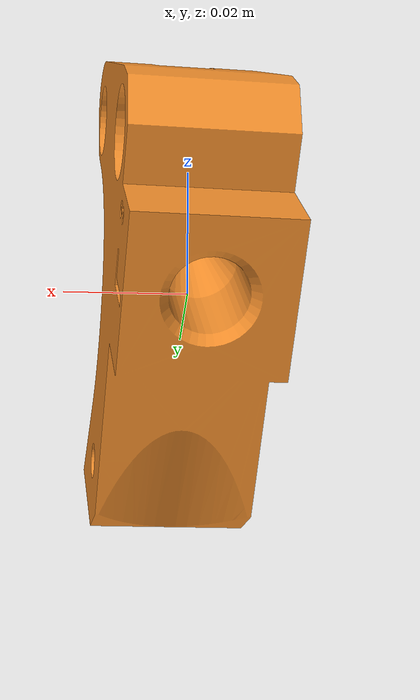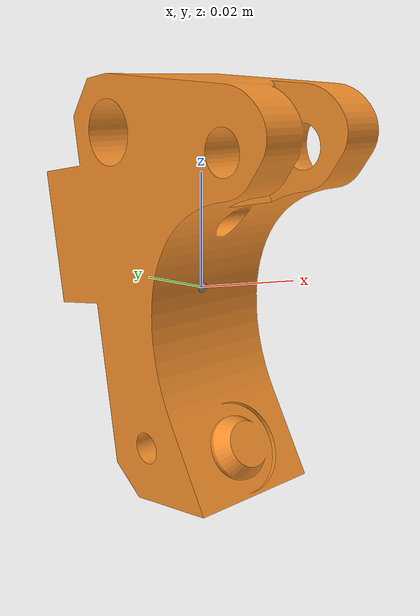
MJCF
<mujoco model="3">
  <default>
    <default class="visual">
      <geom group="2" type="mesh" contype="0" conaffinity="0" material="color_3" />
    </default>
    <default class="collision">
      <geom group="3" type="mesh" solimp="0.95 0.99 0.0001" solref="0.01 1" />
    </default>
  </default>
  <asset>
    <mesh file="3.obj" />
    <mesh file="3_collision_0.obj" />
    <mesh file="3_collision_1.obj" />
    <mesh file="3_collision_2.obj" />
    <mesh file="3_collision_3.obj" />
    <mesh file="3_collision_4.obj" />
    <mesh file="3_collision_5.obj" />
    <mesh file="3_collision_6.obj" />
    <mesh file="3_collision_7.obj" />
    <mesh file="3_collision_8.obj" />
    <mesh file="3_collision_9.obj" />
    <mesh file="3_collision_10.obj" />
    <mesh file="3_collision_11.obj" />
    <mesh file="3_collision_12.obj" />
    <mesh file="3_collision_13.obj" />
    <mesh file="3_collision_14.obj" />
    <mesh file="3_collision_15.obj" />
    <mesh file="3_collision_16.obj" />
    <mesh file="3_collision_17.obj" />
    <mesh file="3_collision_18.obj" />
    <mesh file="3_collision_19.obj" />
    <mesh file="3_collision_20.obj" />
    <mesh file="3_collision_21.obj" />
    <mesh file="3_collision_22.obj" />
    <mesh file="3_collision_23.obj" />
    <mesh file="3_collision_24.obj" />
    <mesh file="3_collision_25.obj" />
    <mesh file="3_collision_26.obj" />
    <mesh file="3_collision_27.obj" />
    <mesh file="3_collision_28.obj" />
    <mesh file="3_collision_29.obj" />
    <mesh file="3_collision_30.obj" />
    <mesh file="3_collision_31.obj" />
    <material name='color_3' specular='0.5' shininess='0.25'
      rgba='0.949019608 0.556862745 0.168627451 1.0' />
  </asset>
  <worldbody>
    <body name="3">
      <site name="centroid" euler="90 0 225" size="0.001 0.001 0.001" />
      <geom name="main_geom" mesh="3" class="visual" />
      <geom mesh="3_collision_0" class="collision" />
      <geom mesh="3_collision_1" class="collision" />
      <geom mesh="3_collision_2" class="collision" />
      <geom mesh="3_collision_3" class="collision" />
      <geom mesh="3_collision_4" class="collision" />
      <geom mesh="3_collision_5" class="collision" />
      <geom mesh="3_collision_6" class="collision" />
      <geom mesh="3_collision_7" class="collision" />
      <geom mesh="3_collision_8" class="collision" />
      <geom mesh="3_collision_9" class="collision" />
      <geom mesh="3_collision_10" class="collision" />
      <geom mesh="3_collision_11" class="collision" />
      <geom mesh="3_collision_12" class="collision" />
      <geom mesh="3_collision_13" class="collision" />
      <geom mesh="3_collision_14" class="collision" />
      <geom mesh="3_collision_15" class="collision" />
      <geom mesh="3_collision_16" class="collision" />
      <geom mesh="3_collision_17" class="collision" />
      <geom mesh="3_collision_18" class="collision" />
      <geom mesh="3_collision_19" class="collision" />
      <geom mesh="3_collision_20" class="collision" />
      <geom mesh="3_collision_21" class="collision" />
      <geom mesh="3_collision_22" class="collision" />
      <geom mesh="3_collision_23" class="collision" />
      <geom mesh="3_collision_24" class="collision" />
      <geom mesh="3_collision_25" class="collision" />
      <geom mesh="3_collision_26" class="collision" />
      <geom mesh="3_collision_27" class="collision" />
      <geom mesh="3_collision_28" class="collision" />
      <geom mesh="3_collision_29" class="collision" />
      <geom mesh="3_collision_30" class="collision" />
      <geom mesh="3_collision_31" class="collision" />
    </body>
  </worldbody>
</mujoco>
